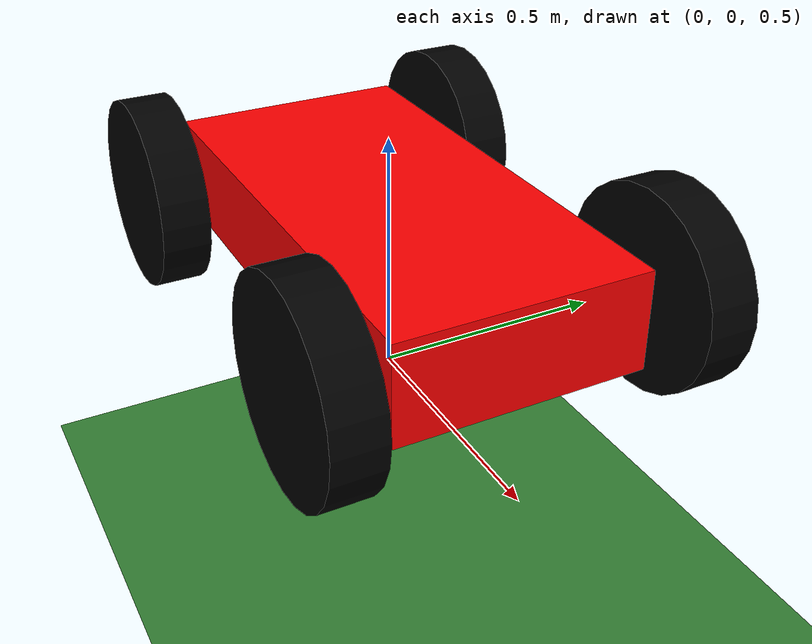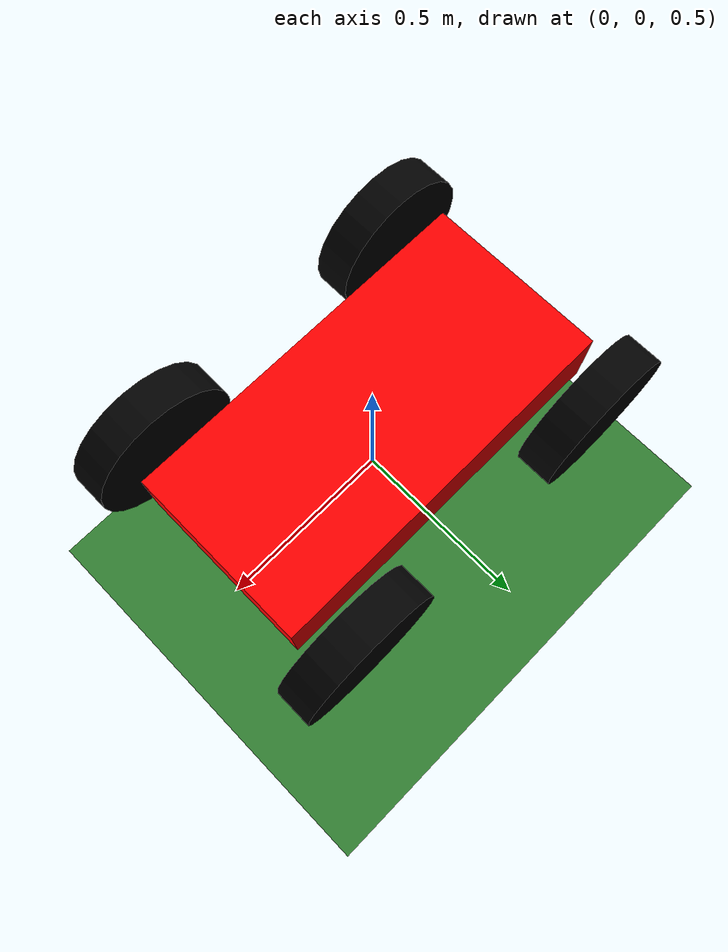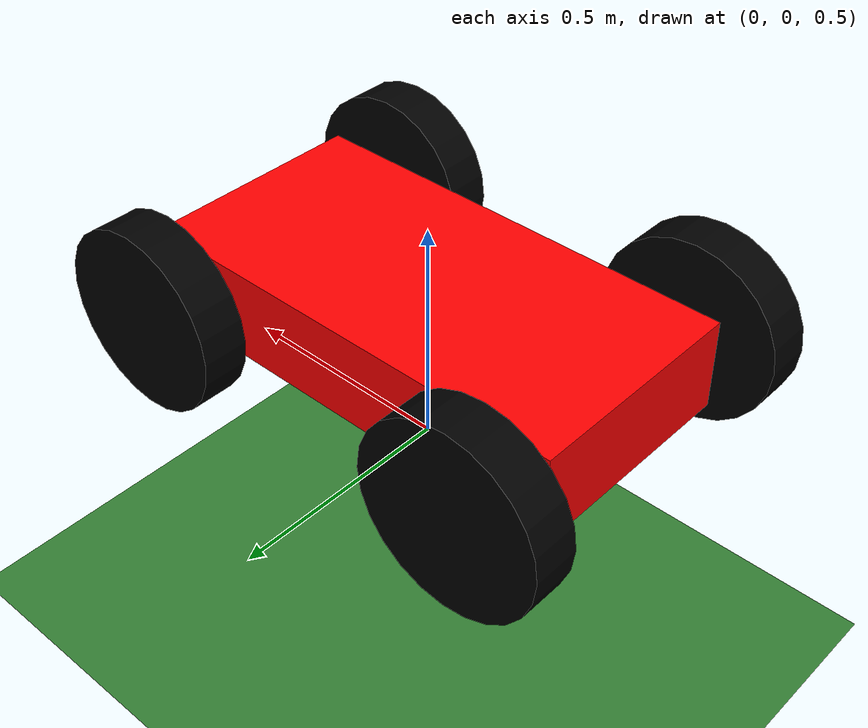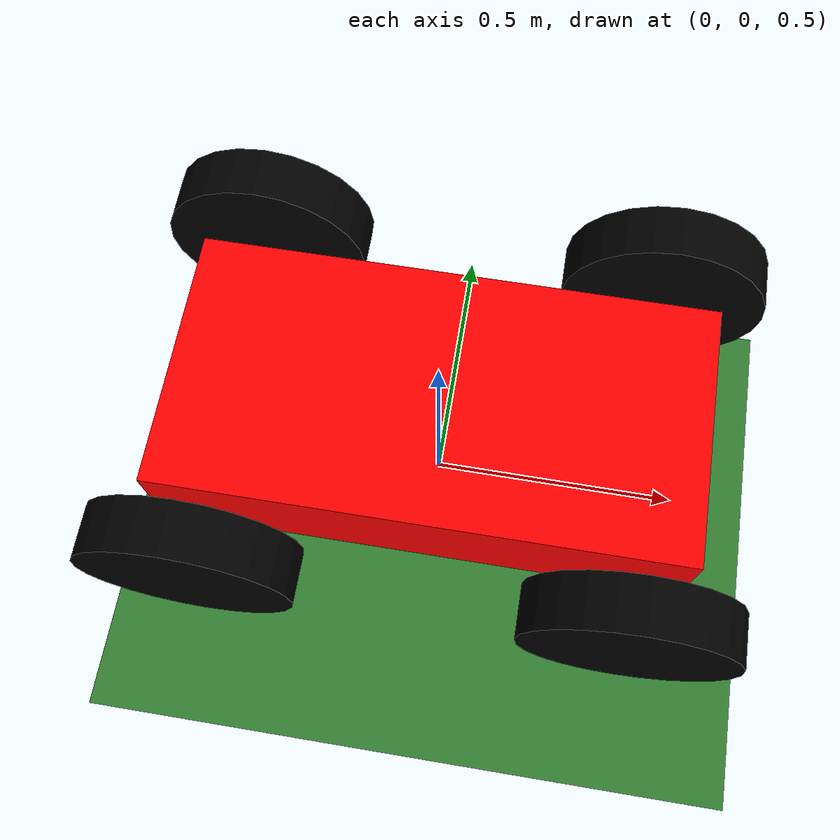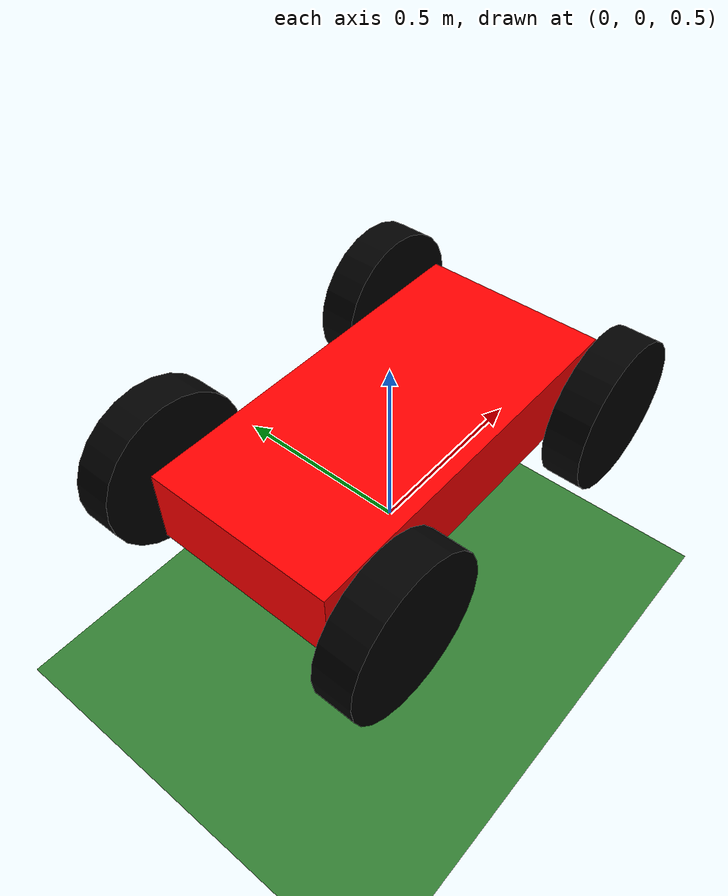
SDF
<?xml version="1.0" ?>
<sdf version="1.8">
  <world name="midwest_backyard">
<plugin filename="gz-sim-physics-system" name="gz::sim::systems::Physics"/>
<plugin filename="gz-sim-user-commands-system" name="gz::sim::systems::UserCommands"/>
<plugin filename="gz-sim-scene-broadcaster-system" name="gz::sim::systems::SceneBroadcaster"/>
<plugin filename="gz-sim-contact-system" name="gz::sim::systems::Contact"/>

    <light type="directional" name="sun">
      <cast_shadows>true</cast_shadows>
      <pose>0 0 10 0 0 0</pose>
      <diffuse>1 1 1 1</diffuse>
      <direction>-0.5 0.1 -0.9</direction>
    </light>

    <model name="ground_plane">
      <static>true</static>
      <link name="link">
        <collision name="collision">
          <geometry><plane><normal>0 0 1</normal><size>20 20</size></plane></geometry>
        </collision>
        <visual name="visual">
          <geometry><plane><normal>0 0 1</normal><size>20 20</size></plane></geometry>
          <material><ambient>0.2 0.5 0.2 1</ambient><diffuse>0.2 0.5 0.2 1</diffuse></material>
        </visual>
      </link>
    </model>

    <include>
      <uri>model://dog_bot.sdf</uri>
      <pose>0 0 0.5 0 0 0</pose>
    </include>
  </world>
</sdf>

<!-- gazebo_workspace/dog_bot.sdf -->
<sdf version="1.8">
  <model name="dog_bot">
    <self_collide>false</self_collide>

    <link name="chassis">
      <pose>0 0 0.3 0 0 0</pose>
      <inertial>
        <mass>20.0</mass>
        <inertia><ixx>0.1</ixx><iyy>0.1</iyy><izz>0.1</izz></inertia>
      </inertial>
      <visual name="v">
        <geometry><box><size>1.0 0.5 0.2</size></box></geometry>
        <material><ambient>1 0 0 1</ambient><diffuse>1 0 0 1</diffuse></material>
      </visual>
      <collision name="c">
        <geometry><box><size>1.0 0.5 0.2</size></box></geometry>
      </collision>
    </link>

    <!-- FRONT LEFT ASSEMBLY (Steer + Roll) -->
    <link name="fl_steer_hinge">
      <pose>0.4 0.35 0.3 0 0 0</pose>
      <inertial><mass>0.1</mass><inertia><ixx>0.01</ixx><iyy>0.01</iyy><izz>0.01</izz></inertia></inertial>
    </link>
    <joint name="fl_steer_j" type="revolute">
      <parent>chassis</parent><child>fl_steer_hinge</child>
      <axis><xyz>0 0 1</xyz><limit><lower>-0.6</lower><upper>0.6</upper><effort>1000</effort></limit></axis>
    </joint>
    <link name="fl_wheel">
      <pose>0.4 0.35 0.3 -1.5708 0 0</pose>
      <visual name="v"><geometry><cylinder><radius>0.2</radius><length>0.1</length></cylinder></geometry><material><ambient>0 0 0 1</ambient></material></visual>
      <collision name="c"><geometry><cylinder><radius>0.2</radius><length>0.1</length></cylinder></geometry></collision>
    </link>
    <joint name="fl_wheel_j" type="revolute">
      <parent>fl_steer_hinge</parent><child>fl_wheel</child>
      <axis><xyz>0 0 1</xyz><limit><effort>100000</effort></limit></axis>
    </joint>

    <!-- FRONT RIGHT ASSEMBLY (Steer + Roll) -->
    <link name="fr_steer_hinge">
      <pose>0.4 -0.35 0.3 0 0 0</pose>
      <inertial><mass>0.1</mass><inertia><ixx>0.01</ixx><iyy>0.01</iyy><izz>0.01</izz></inertia></inertial>
    </link>
    <joint name="fr_steer_j" type="revolute">
      <parent>chassis</parent><child>fr_steer_hinge</child>
      <axis><xyz>0 0 1</xyz><limit><lower>-0.6</lower><upper>0.6</upper><effort>1000</effort></limit></axis>
    </joint>
    <link name="fr_wheel">
      <pose>0.4 -0.35 0.3 -1.5708 0 0</pose>
      <visual name="v"><geometry><cylinder><radius>0.2</radius><length>0.1</length></cylinder></geometry><material><ambient>0 0 0 1</ambient></material></visual>
      <collision name="c"><geometry><cylinder><radius>0.2</radius><length>0.1</length></cylinder></geometry></collision>
    </link>
    <joint name="fr_wheel_j" type="revolute">
      <parent>fr_steer_hinge</parent><child>fr_wheel</child>
      <axis><xyz>0 0 1</xyz><limit><effort>100000</effort></limit></axis>
    </joint>

    <!-- REAR LEFT (Drive Only) -->
    <link name="rl_wheel">
      <pose>-0.4 0.35 0.3 -1.5708 0 0</pose>
      <visual name="v"><geometry><cylinder><radius>0.2</radius><length>0.1</length></cylinder></geometry><material><ambient>0 0 0 1</ambient></material></visual>
      <collision name="c"><geometry><cylinder><radius>0.2</radius><length>0.1</length></cylinder></geometry></collision>
    </link>
    <joint name="rl_drive_j" type="revolute">
      <parent>chassis</parent><child>rl_wheel</child>
      <axis><xyz>0 0 1</xyz><limit><lower>-1e16</lower><upper>1e16</upper><effort>100000</effort></limit></axis>
    </joint>

    <!-- REAR RIGHT (Drive Only) -->
    <link name="rr_wheel">
      <pose>-0.4 -0.35 0.3 -1.5708 0 0</pose>
      <visual name="v"><geometry><cylinder><radius>0.2</radius><length>0.1</length></cylinder></geometry><material><ambient>0 0 0 1</ambient></material></visual>
      <collision name="c"><geometry><cylinder><radius>0.2</radius><length>0.1</length></cylinder></geometry></collision>
    </link>
    <joint name="rr_drive_j" type="revolute">
      <parent>chassis</parent><child>rr_wheel</child>
      <axis><xyz>0 0 1</xyz><limit><lower>-1e16</lower><upper>1e16</upper><effort>100000</effort></limit></axis>
    </joint>
<!-- PLUGINS -->
    <!-- 1. Joint State Publisher -->
    <plugin filename="gz-sim-joint-state-publisher-system" name="gz::sim::systems::JointStatePublisher"/>

    <!-- 2. Drive Controllers (Rear Wheels) -->
    <plugin filename="gz-sim-joint-controller-system" name="gz::sim::systems::JointController">
      <joint_name>rl_drive_j</joint_name>
      <sub_topic>joint/rl_drive_j/cmd_vel</sub_topic>
    </plugin>
    <plugin filename="gz-sim-joint-controller-system" name="gz::sim::systems::JointController">
      <joint_name>rr_drive_j</joint_name>
      <sub_topic>joint/rr_drive_j/cmd_vel</sub_topic>
    </plugin>

    <!-- 3. Steering Controllers (Front Hinge Pivot) -->
    <plugin filename="gz-sim-joint-controller-system" name="gz::sim::systems::JointController">
      <joint_name>fl_steer_j</joint_name>
      <sub_topic>joint/fl_steer_j/cmd_vel</sub_topic>
    </plugin>
    <plugin filename="gz-sim-joint-controller-system" name="gz::sim::systems::JointController">
      <joint_name>fr_steer_j</joint_name>
      <sub_topic>joint/fr_steer_j/cmd_vel</sub_topic>
    </plugin>

  </model>
</sdf>
